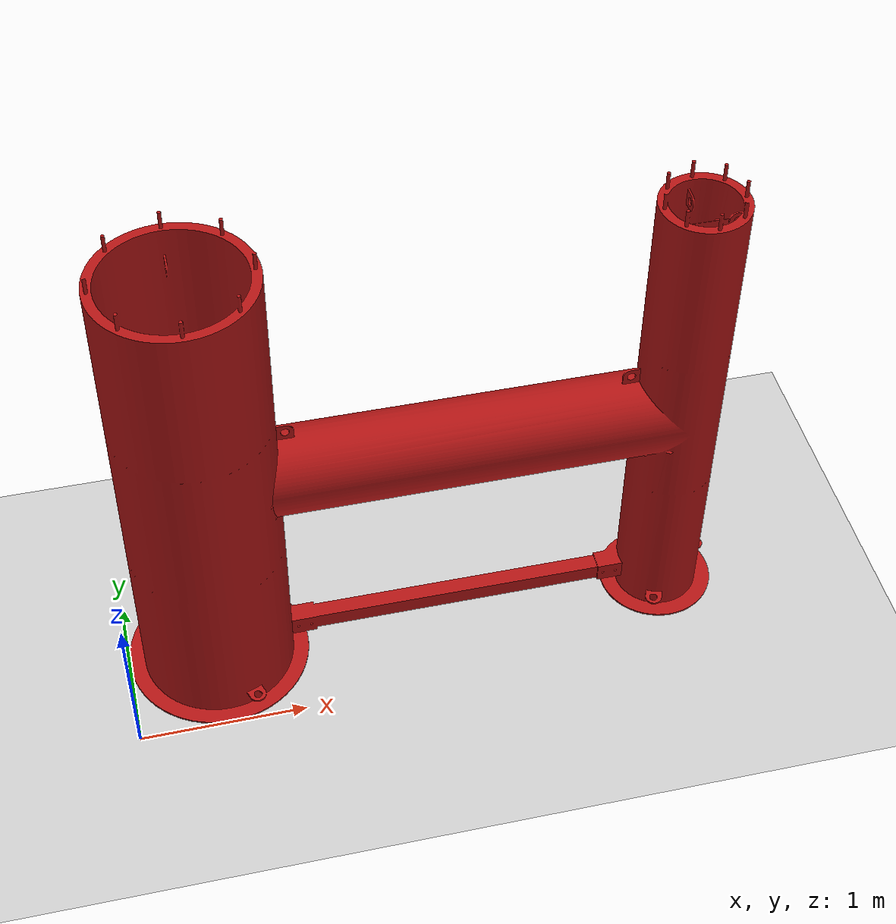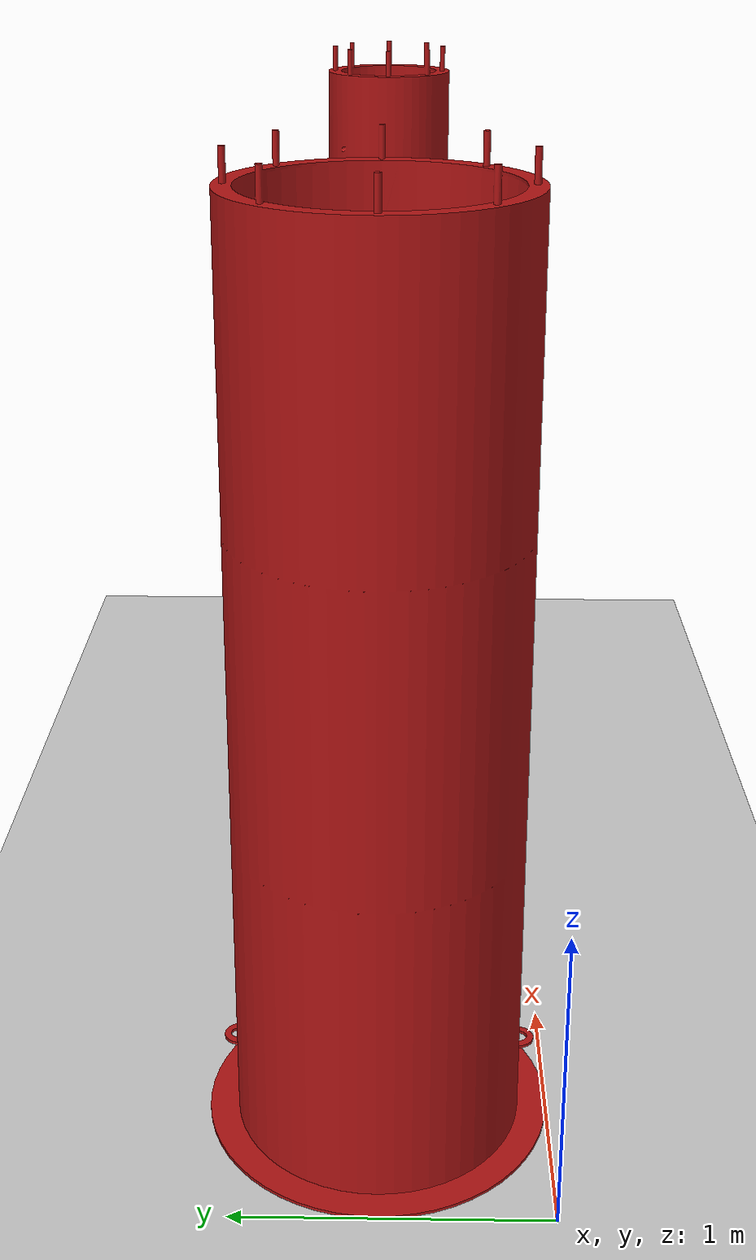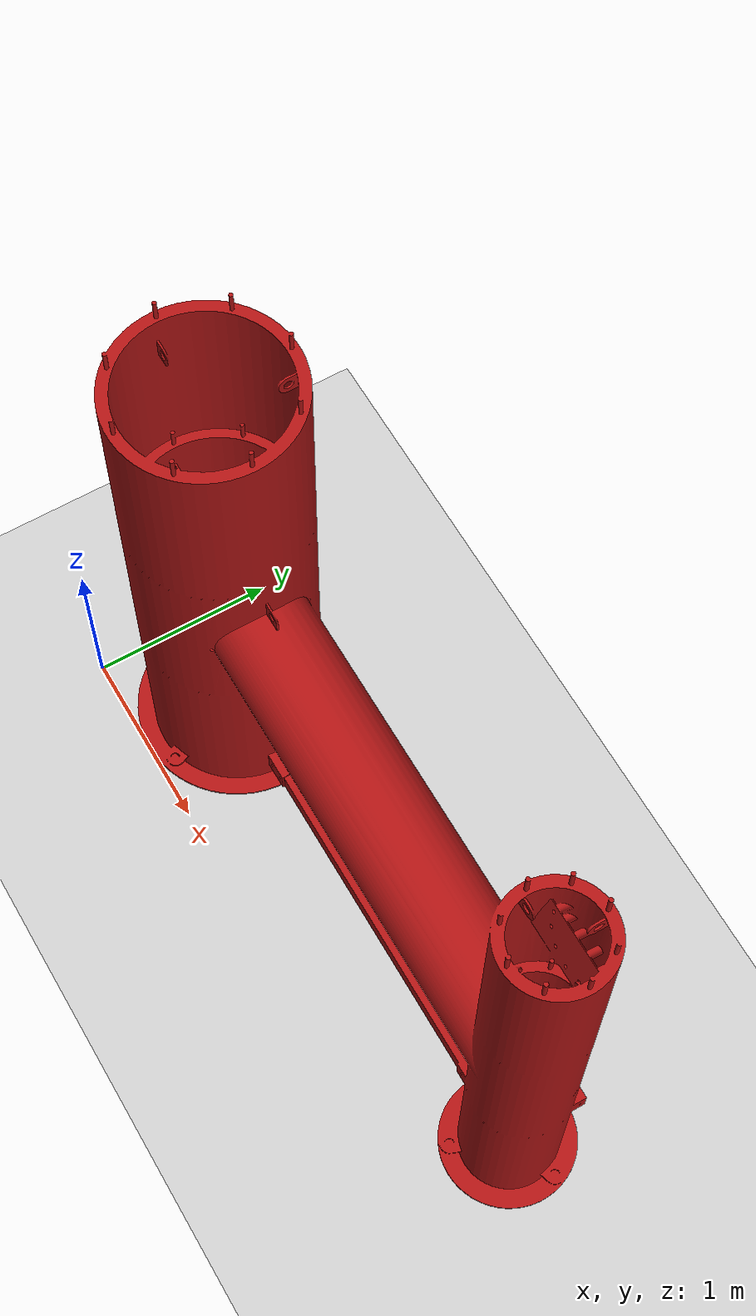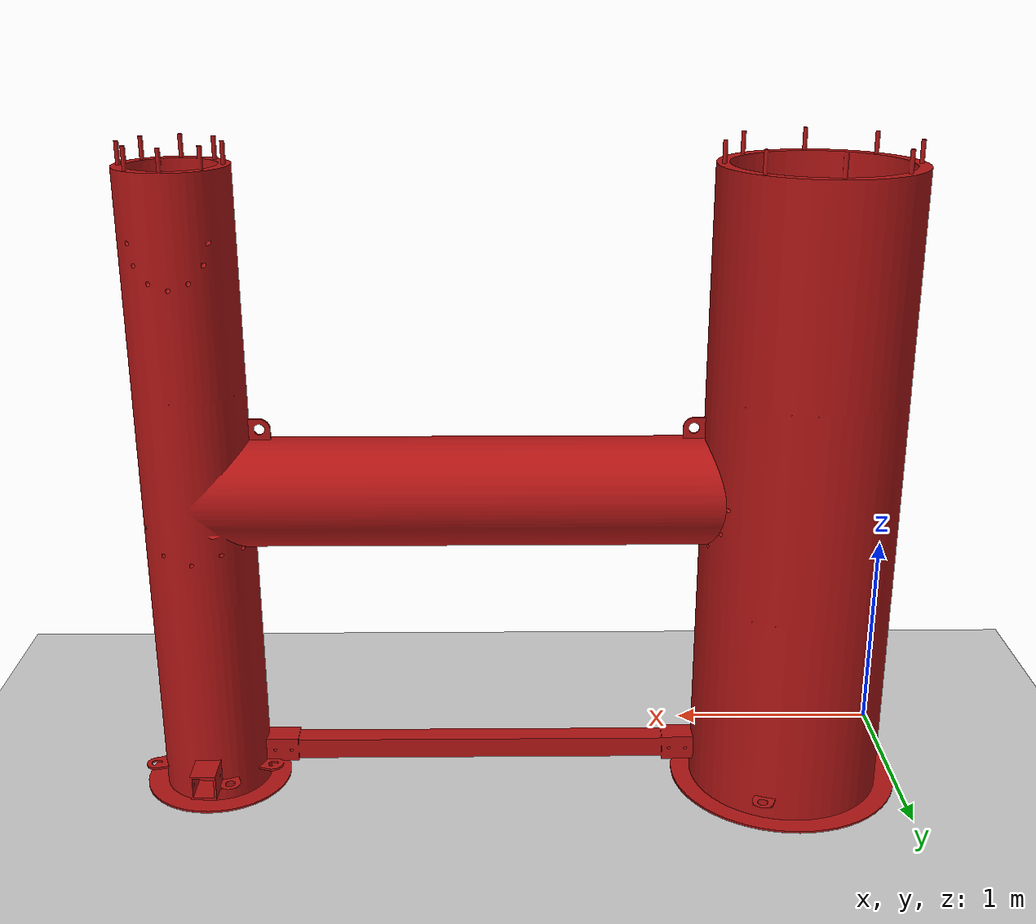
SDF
<?xml version="1.0" ?>
<sdf version="1.8">
  <world name="mockup_pipe_test">
    <gravity>0 0 -9.8</gravity>
    <physics name="1ms" type="ode">
      <max_step_size>0.001</max_step_size>
      <real_time_update_rate>1000</real_time_update_rate>
      <real_time_factor>1.0</real_time_factor>
      <ode>
        <solver>
          <type>quick</type>
          <iters>250</iters>
          <sor>1.3</sor>
        </solver>
        <constraints>
          <cfm>0.0</cfm>
          <erp>0.2</erp>
          <contact_max_correcting_vel>0.01</contact_max_correcting_vel>
          <contact_surface_layer>0.0001</contact_surface_layer>
        </constraints>
      </ode>
    </physics>

    <plugin filename="gz-sim-physics-system" name="gz::sim::systems::Physics"/>
    <plugin filename="gz-sim-user-commands-system" name="gz::sim::systems::UserCommands"/>
    <plugin filename="gz-sim-apply-link-wrench-system" name="gz::sim::systems::ApplyLinkWrench"/>
    <plugin filename="gz-sim-contact-system" name="gz::sim::systems::Contact"/>
    <plugin filename="gz-sim-scene-broadcaster-system" name="gz::sim::systems::SceneBroadcaster"/>

    <light type="directional" name="sun">
      <cast_shadows>true</cast_shadows>
      <pose>0 0 10 0 0 0</pose>
      <diffuse>0.8 0.8 0.8 1</diffuse>
      <specular>0.2 0.2 0.2 1</specular>
      <direction>-0.5 0.1 -0.9</direction>
    </light>

    <model name="ground_plane">
      <static>true</static>
      <link name="link">
        <collision name="collision">
          <geometry><plane><normal>0 0 1</normal></plane></geometry>
          <surface>
            <friction>
              <ode>
                <mu>1.0</mu>
                <mu2>1.0</mu2>
              </ode>
            </friction>
          </surface>
        </collision>
        <visual name="visual">
          <geometry><plane><normal>0 0 1</normal></plane></geometry>
          <material>
            <ambient>0.8 0.8 0.8 1</ambient>
            <diffuse>0.8 0.8 0.8 1</diffuse>
            <specular>0.8 0.8 0.8 1</specular>
          </material>
        </visual>
      </link>
    </model>

    <include>
      <uri>model://mockup_structure</uri>
      <pose>0 0 0.000000 1.5708 0 0</pose>
    </include>
  </world>
</sdf>

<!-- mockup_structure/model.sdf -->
<sdf version="1.7">
  <model name="mockup_structure">

    <!-- Static: the structure is fixed to the world, no physics integration. -->
    <static>true</static>

    <link name="structure_link">

      <!-- Visual mesh: fine resolution, what you see in the GUI. -->
      <visual name="visual">
        <geometry>
          <mesh>
            <uri>model://mockup_structure/meshes/mockup_structure_visual.dae</uri>
            <scale>1 1 1</scale>
          </mesh>
        </geometry>
        <material>
          <ambient>0.63 0.07 0.08 1</ambient>
          <diffuse>0.70 0.08 0.08 1</diffuse>
          <specular>0.20 0.20 0.20 1</specular>
        </material>
      </visual>

      <!-- Collision mesh: coarse resolution, used by the physics engine
           for contact with the robot. Lighter than the visual mesh. -->
      <collision name="collision">
        <geometry>
          <mesh>
            <uri>model://mockup_structure/meshes/mockup_structure_collision.dae</uri>
            <scale>1 1 1</scale>
          </mesh>
        </geometry>
        <surface>
          <friction>
            <ode>
              <mu>1.0</mu>
              <mu2>1.0</mu2>
            </ode>
          </friction>
        </surface>
      </collision>

    </link>
  </model>
</sdf>
